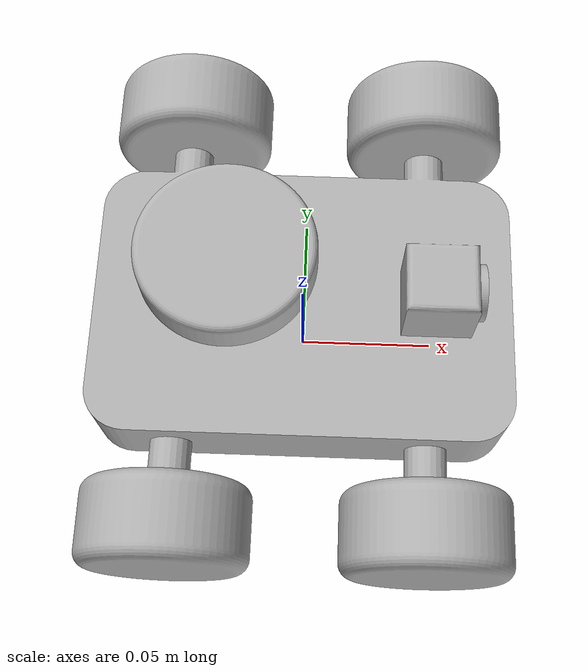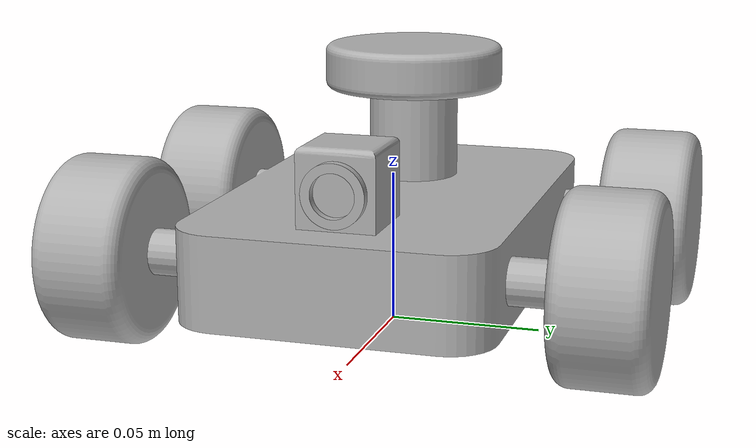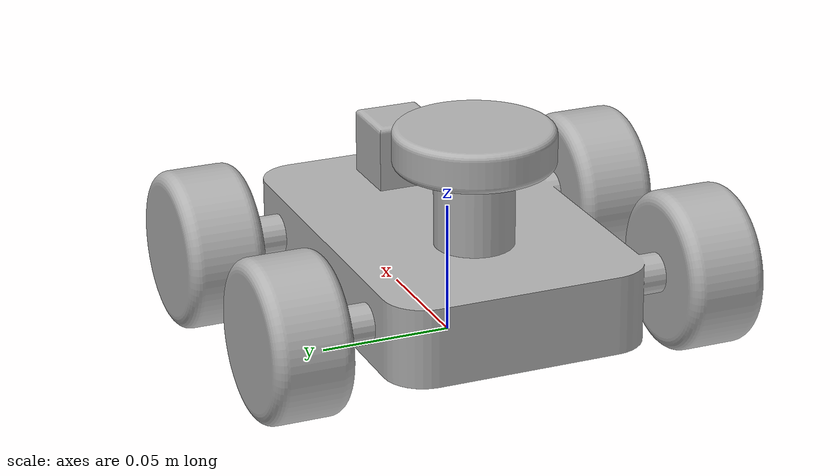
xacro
<?xml version="1.0" ?>
<robot name="libot" xmlns:xacro="http://www.ros.org/wiki/xacro">

<xacro:include filename="$(find libot_description)/urdf/materials.xacro" />
<xacro:include filename="$(find libot_description)/urdf/libot.trans" />
<xacro:include filename="$(find libot_description)/urdf/libot.gazebo" />
<link name="base_link">
  <inertial>
    <origin xyz="0.00042337347607461663 9.251169610507761e-18 0.032161677080460666" rpy="0 0 0"/>
    <mass value="0.5210499993342951"/>
    <inertia ixx="0.000492" iyy="0.001007" izz="0.001363" ixy="0.0" iyz="0.0" ixz="-4e-06"/>
  </inertial>
  <visual>
    <origin xyz="0 0 0" rpy="0 0 0"/>
    <geometry>
      <mesh filename="package://libot_description/meshes/base_link.stl" scale="0.001 0.001 0.001"/>
    </geometry>
    <material name="silver"/>
  </visual>
  <collision>
    <origin xyz="0 0 0" rpy="0 0 0"/>
    <geometry>
      <mesh filename="package://libot_description/meshes/base_link.stl" scale="0.001 0.001 0.001"/>
    </geometry>
  </collision>
</link>

<link name="right_wheel_back_1">
  <inertial>
    <origin xyz="-2.0816681711721685e-17 -0.015 1.0408340855860843e-17" rpy="0 0 0"/>
    <mass value="0.07707442273952339"/>
    <inertia ixx="2.3e-05" iyy="3.4e-05" izz="2.3e-05" ixy="0.0" iyz="0.0" ixz="-0.0"/>
  </inertial>
  <visual>
    <origin xyz="0.045 0.065 -0.03" rpy="0 0 0"/>
    <geometry>
      <mesh filename="package://libot_description/meshes/right_wheel_back_1.stl" scale="0.001 0.001 0.001"/>
    </geometry>
    <material name="silver"/>
  </visual>
  <collision>
    <origin xyz="0.045 0.065 -0.03" rpy="0 0 0"/>
    <geometry>
      <mesh filename="package://libot_description/meshes/right_wheel_back_1.stl" scale="0.001 0.001 0.001"/>
    </geometry>
  </collision>
</link>

<link name="right_wheel_front__1">
  <inertial>
    <origin xyz="2.0816681711721685e-17 -0.015000000000000013 1.0408340855860843e-17" rpy="0 0 0"/>
    <mass value="0.0770744227395234"/>
    <inertia ixx="2.3e-05" iyy="3.4e-05" izz="2.3e-05" ixy="-0.0" iyz="-0.0" ixz="0.0"/>
  </inertial>
  <visual>
    <origin xyz="-0.045 0.065 -0.03" rpy="0 0 0"/>
    <geometry>
      <mesh filename="package://libot_description/meshes/right_wheel_front__1.stl" scale="0.001 0.001 0.001"/>
    </geometry>
    <material name="silver"/>
  </visual>
  <collision>
    <origin xyz="-0.045 0.065 -0.03" rpy="0 0 0"/>
    <geometry>
      <mesh filename="package://libot_description/meshes/right_wheel_front__1.stl" scale="0.001 0.001 0.001"/>
    </geometry>
  </collision>
</link>

<link name="left_wheel_front_1">
  <inertial>
    <origin xyz="2.0816681711721685e-17 0.015 6.938893903907228e-18" rpy="0 0 0"/>
    <mass value="0.07707442273952339"/>
    <inertia ixx="2.3e-05" iyy="3.4e-05" izz="2.3e-05" ixy="0.0" iyz="-0.0" ixz="0.0"/>
  </inertial>
  <visual>
    <origin xyz="-0.045 -0.065 -0.03" rpy="0 0 0"/>
    <geometry>
      <mesh filename="package://libot_description/meshes/left_wheel_front_1.stl" scale="0.001 0.001 0.001"/>
    </geometry>
    <material name="silver"/>
  </visual>
  <collision>
    <origin xyz="-0.045 -0.065 -0.03" rpy="0 0 0"/>
    <geometry>
      <mesh filename="package://libot_description/meshes/left_wheel_front_1.stl" scale="0.001 0.001 0.001"/>
    </geometry>
  </collision>
</link>

<link name="left_wheel_back_1">
  <inertial>
    <origin xyz="-1.3877787807814457e-17 0.015 1.0408340855860843e-17" rpy="0 0 0"/>
    <mass value="0.0770744227395234"/>
    <inertia ixx="2.3e-05" iyy="3.4e-05" izz="2.3e-05" ixy="0.0" iyz="0.0" ixz="-0.0"/>
  </inertial>
  <visual>
    <origin xyz="0.045 -0.065 -0.03" rpy="0 0 0"/>
    <geometry>
      <mesh filename="package://libot_description/meshes/left_wheel_back_1.stl" scale="0.001 0.001 0.001"/>
    </geometry>
    <material name="silver"/>
  </visual>
  <collision>
    <origin xyz="0.045 -0.065 -0.03" rpy="0 0 0"/>
    <geometry>
      <mesh filename="package://libot_description/meshes/left_wheel_back_1.stl" scale="0.001 0.001 0.001"/>
    </geometry>
  </collision>
</link>

<link name="lidar_1">
  <inertial>
    <origin xyz="0.0 -6.7807531641958715e-18 0.007500000000000007" rpy="0 0 0"/>
    <mass value="0.04443018535950645"/>
    <inertia ixx="1.1e-05" iyy="1.1e-05" izz="2e-05" ixy="-0.0" iyz="-0.0" ixz="-0.0"/>
  </inertial>
  <visual>
    <origin xyz="0.025 0.0 -0.075" rpy="0 0 0"/>
    <geometry>
      <mesh filename="package://libot_description/meshes/lidar_1.stl" scale="0.001 0.001 0.001"/>
    </geometry>
    <material name="silver"/>
  </visual>
  <collision>
    <origin xyz="0.025 0.0 -0.075" rpy="0 0 0"/>
    <geometry>
      <mesh filename="package://libot_description/meshes/lidar_1.stl" scale="0.001 0.001 0.001"/>
    </geometry>
  </collision>
</link>

<link name="camera_1">
  <inertial>
    <origin xyz="0.0014999999999999875 -1.5013511568273684e-17 0.0" rpy="0 0 0"/>
    <mass value="0.0005095034965591924"/>
    <inertia ixx="0.0" iyy="0.0" izz="0.0" ixy="-0.0" iyz="-0.0" ixz="-0.0"/>
  </inertial>
  <visual>
    <origin xyz="-0.06 0.0 -0.0565" rpy="0 0 0"/>
    <geometry>
      <mesh filename="package://libot_description/meshes/camera_1.stl" scale="0.001 0.001 0.001"/>
    </geometry>
    <material name="silver"/>
  </visual>
  <collision>
    <origin xyz="-0.06 0.0 -0.0565" rpy="0 0 0"/>
    <geometry>
      <mesh filename="package://libot_description/meshes/camera_1.stl" scale="0.001 0.001 0.001"/>
    </geometry>
  </collision>
</link>

<joint name="right_wheel_back_joint" type="continuous">
  <origin xyz="-0.045 -0.065 0.03" rpy="0 0 0"/>
  <parent link="base_link"/>
  <child link="right_wheel_back_1"/>
  <axis xyz="0.0 1.0 0.0"/>
</joint>

<joint name="right_wheel_front_joint" type="continuous">
  <origin xyz="0.045 -0.065 0.03" rpy="0 0 0"/>
  <parent link="base_link"/>
  <child link="right_wheel_front__1"/>
  <axis xyz="0.0 1.0 0.0"/>
</joint>

<joint name="left_wheel_front_joint" type="continuous">
  <origin xyz="0.045 0.065 0.03" rpy="0 0 0"/>
  <parent link="base_link"/>
  <child link="left_wheel_front_1"/>
  <axis xyz="0.0 1.0 0.0"/>
</joint>

<joint name="left_wheel_back_joint" type="continuous">
  <origin xyz="-0.045 0.065 0.03" rpy="0 0 0"/>
  <parent link="base_link"/>
  <child link="left_wheel_back_1"/>
  <axis xyz="0.0 1.0 0.0"/>
</joint>

<joint name="lidar_joint" type="fixed">
  <origin xyz="-0.025 0.0 0.075" rpy="0 0 0"/>
  <parent link="base_link"/>
  <child link="lidar_1"/>
</joint>

<joint name="camera_joint" type="fixed">
  <origin xyz="0.06 0.0 0.0565" rpy="0 0 0"/>
  <parent link="base_link"/>
  <child link="camera_1"/>
</joint>

</robot>

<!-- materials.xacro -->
<robot name="libot" xmlns:xacro="http://www.ros.org/wiki/xacro" >

<material name="silver">
  <color rgba="0.700 0.700 0.700 1.000"/>
</material>

</robot>

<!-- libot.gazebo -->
<robot name="libot" xmlns:xacro="http://www.ros.org/wiki/xacro" >

<xacro:property name="body_color" value="Gazebo/Silver" />

<gazebo>
  <plugin name="control" filename="libgazebo_ros_control.so"/>
</gazebo>
<gazebo reference="base_link">
  <material>${body_color}</material>
  <mu1>0.2</mu1>
  <mu2>0.2</mu2>
  <selfCollide>true</selfCollide>
  <gravity>true</gravity>
</gazebo>

<gazebo reference="right_wheel_back_1">
  <material>${body_color}</material>
  <mu1>0.2</mu1>
  <mu2>0.2</mu2>
  <selfCollide>true</selfCollide>
</gazebo>

<gazebo reference="right_wheel_front__1">
  <material>${body_color}</material>
  <mu1>0.2</mu1>
  <mu2>0.2</mu2>
  <selfCollide>true</selfCollide>
</gazebo>

<gazebo reference="left_wheel_front_1">
  <material>${body_color}</material>
  <mu1>0.2</mu1>
  <mu2>0.2</mu2>
  <selfCollide>true</selfCollide>
</gazebo>

<gazebo reference="left_wheel_back_1">
  <material>${body_color}</material>
  <mu1>0.2</mu1>
  <mu2>0.2</mu2>
  <selfCollide>true</selfCollide>
</gazebo>

<gazebo reference="lidar_1">
  <material>${body_color}</material>
  <mu1>0.2</mu1>
  <mu2>0.2</mu2>
  <selfCollide>true</selfCollide>
</gazebo>

<gazebo reference="camera_1">
  <material>${body_color}</material>
  <mu1>0.2</mu1>
  <mu2>0.2</mu2>
  <selfCollide>true</selfCollide>
</gazebo>

<gazebo>
   <plugin name="differential_drive_controller" filename="libgazebo_ros_diff_drive.so">

    <!-- Plugin update rate in Hz -->
    <updateRate>10</updateRate>

    <!-- Name of left joint, defaults to `left_joint` -->
    <leftJoint>left_wheel_front_joint</leftJoint>

    <!-- Name of left joint, defaults to `left_joint` -->
    <leftJoint>left_wheel_back_joint</leftJoint>

    <!-- Name of right joint, defaults to `right_joint` -->
    <rightJoint>right_wheel_front_joint</rightJoint>

    <!-- Name of right joint, defaults to `right_joint` -->
    <rightJoint>right_wheel_back_joint</rightJoint>

    <!-- The distance from the center of one wheel to the other, in meters, defaults to 0.34 m -->
    <wheelSeparation>0.5380</wheelSeparation>

    <!-- Diameter of the wheels, in meters, defaults to 0.15 m -->
    <wheelDiameter>0.2410</wheelDiameter>

    <!-- Wheel acceleration, in rad/s^2, defaults to 0.0 rad/s^2 -->
    <wheelAcceleration>1.0</wheelAcceleration>

    <!-- Maximum torque which the wheels can produce, in Nm, defaults to 5 Nm -->
    <wheelTorque>20</wheelTorque>

    <!-- Topic to receive geometry_msgs/Twist message commands, defaults to `cmd_vel` -->
    <commandTopic>cmd_vel</commandTopic>

    <!-- Topic to publish nav_msgs/Odometry messages, defaults to `odom` -->
    <odometryTopic>odom</odometryTopic>

    <!-- Odometry frame, defaults to `odom` -->
    <odometryFrame>odom</odometryFrame>

    <!-- Robot frame to calculate odometry from, defaults to `base_footprint` -->
    <robotBaseFrame>base_link</robotBaseFrame>

    <!-- Odometry source, 0 for ENCODER, 1 for WORLD, defaults to WORLD -->
    <odometrySource>1</odometrySource>

    <!-- Set to true to publish transforms for the wheel links, defaults to false -->
    <publishWheelTF>true</publishWheelTF>

    <!-- Set to true to publish transforms for the odometry, defaults to true -->
    <publishOdom>true</publishOdom>

    <!-- Set to true to publish sensor_msgs/JointState on /joint_states for the wheel joints, defaults to false -->
    <publishWheelJointState>true</publishWheelJointState>

    <!-- Set to true to swap right and left wheels, defaults to true -->
    <legacyMode>false</legacyMode>
  </plugin>
</gazebo>
<gazebo reference="lidar_1">
    <sensor type="ray" name="head_hokuyo_sensor">
      <pose>0 0 0 0 0 0</pose>
      <visualize>true</visualize>
      <update_rate>40</update_rate>
      <ray>
        <scan>
          <horizontal>
            <samples>720</samples>
            <resolution>1</resolution>
            <min_angle>-3.14</min_angle>
            <max_angle>3.14</max_angle>
          </horizontal>
        </scan>
        <range>
          <min>0.10</min>
          <max>30.0</max>
          <resolution>0.01</resolution>
        </range>
        <noise>
          <type>gaussian</type>
          <mean>0.0</mean>
          <stddev>0.01</stddev>
        </noise>
      </ray>
      <plugin name="gazebo_ros_head_hokuyo_controller" filename="libgazebo_ros_laser.so">
        <topicName>/scan</topicName>
        <frameName>lidar_1</frameName>
      </plugin>
    </sensor>
 </gazebo>

 <!-- camera -->
 <gazebo reference="camera_1">
    <sensor type="camera" name="camera1">
      <update_rate>30.0</update_rate>
      <camera name="head">
        <horizontal_fov>1.3962634</horizontal_fov>
        <image>
          <width>800</width>
          <height>800</height>
          <format>R8G8B8</format>
        </image>
        <clip>
          <near>0.02</near>
          <far>300</far>
        </clip>
        <noise>
          <type>gaussian</type>
          <!-- Noise is sampled independently per pixel on each frame.
               That pixel's noise value is added to each of its color
               channels, which at that point lie in the range [0,1]. -->
          <mean>0.0</mean>
          <stddev>0.007</stddev>
        </noise>
      </camera>
      <plugin name="camera_controller" filename="libgazebo_ros_camera.so">
        <alwaysOn>true</alwaysOn>
        <updateRate>0.0</updateRate>
        <cameraName>/camera1</cameraName>
        <imageTopicName>image_raw</imageTopicName>
        <cameraInfoTopicName>camera_info</cameraInfoTopicName>
        <frameName>camera_1</frameName>
        <hackBaseline>0.07</hackBaseline>
        <distortionK1>0.0</distortionK1>
        <distortionK2>0.0</distortionK2>
        <distortionK3>0.0</distortionK3>
        <distortionT1>0.0</distortionT1>
        <distortionT2>0.0</distortionT2>
      </plugin>
    </sensor>
</gazebo>
</robot>
